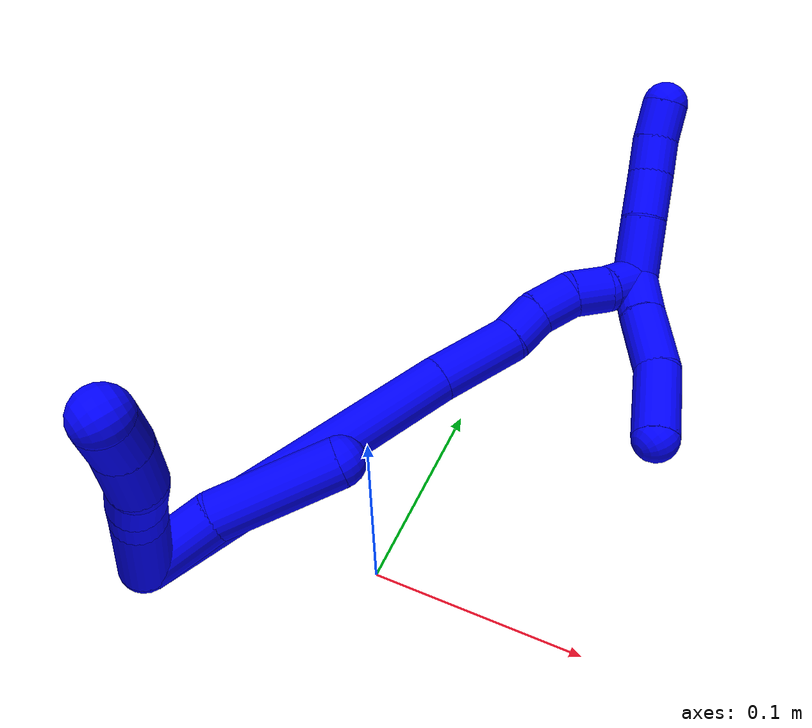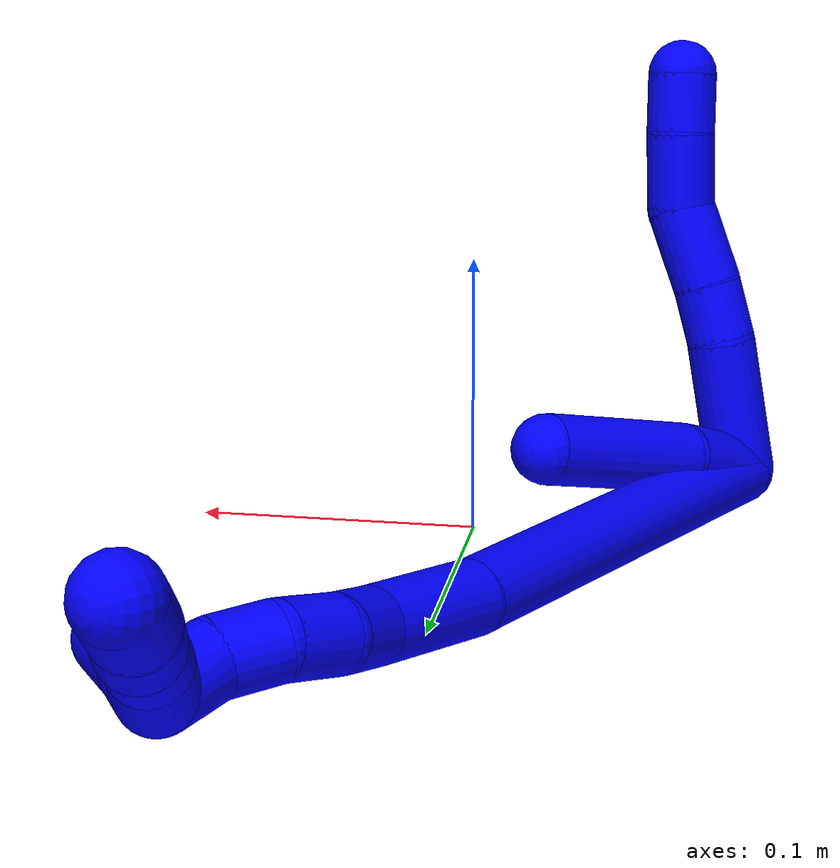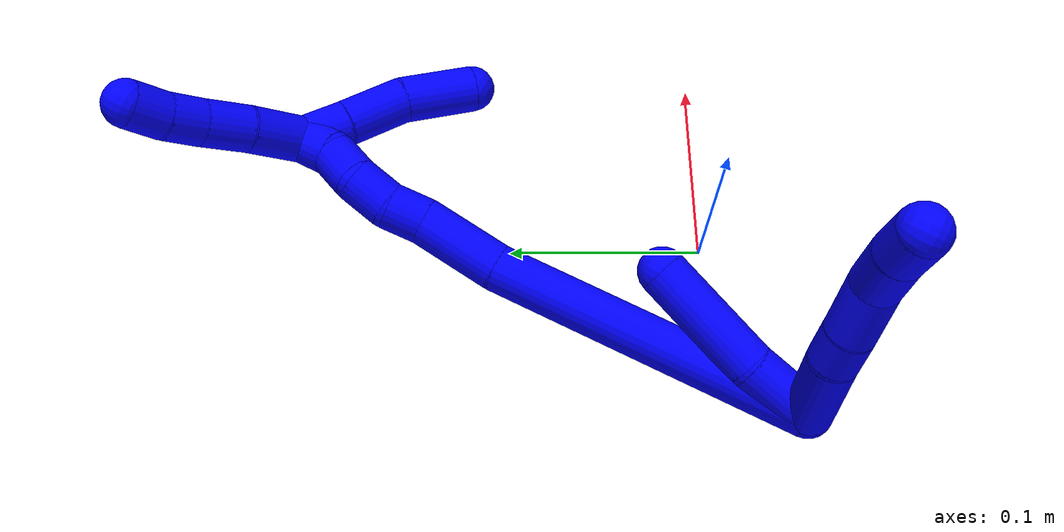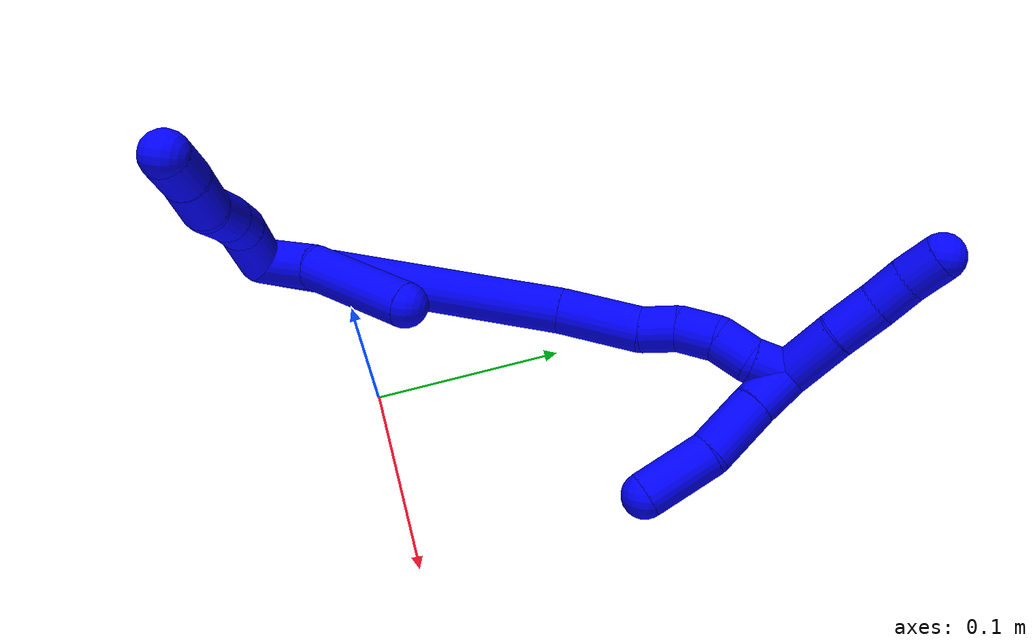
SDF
<sdf version="1.7">
 <world name="default">
  <model name="1">
   <static>0</static>
   <link name="1">
    <collision name="collision-cylinder-e_1_2_8">
     <pose>0.016855 -0.018156 0.003012 1.40642 0.741497 0.636694</pose>
     <geometry><cylinder><radius>0.0125</radius><length>0.049912</length></cylinder></geometry>
     <surface>
      <friction><ode><mu>1.16</mu><mu2>1.16</mu2><slip1>0</slip1><slip2>0</slip2></ode></friction>
      <contact><ode><kp>1e+06</kp><kd>1</kd><max_vel>0</max_vel><min_depth>0.001</min_depth></ode></contact>
     </surface>
    </collision>
    <visual name="visual-cylinder-e_1_2_8">
     <pose>0.016855 -0.018156 0.003012 1.40642 0.741497 0.636694</pose>
     <geometry><cylinder><radius>0.0125</radius><length>0.049912</length></cylinder></geometry>
     <material><ambient>0 0 1 1</ambient></material>
    </visual>
    <collision name="collision-cylinder-e_2_8_9">
     <pose>0.041869 -0.042771 0.00662 1.47871 0.89908 0.828987</pose>
     <geometry><cylinder><radius>0.0125</radius><length>0.020847</length></cylinder></geometry>
     <surface>
      <friction><ode><mu>1.16</mu><mu2>1.16</mu2><slip1>0</slip1><slip2>0</slip2></ode></friction>
      <contact><ode><kp>1e+06</kp><kd>1</kd><max_vel>0</max_vel><min_depth>0.001</min_depth></ode></contact>
     </surface>
    </collision>
    <visual name="visual-cylinder-e_2_8_9">
     <pose>0.041869 -0.042771 0.00662 1.47871 0.89908 0.828987</pose>
     <geometry><cylinder><radius>0.0125</radius><length>0.020847</length></cylinder></geometry>
     <material><ambient>0 0 1 1</ambient></material>
    </visual>
    <collision name="collision-cylinder-e_3_9_10">
     <pose>0.062652 -0.057493 0.008253 1.44601 0.987653 0.886909</pose>
     <geometry><cylinder><radius>0.0125</radius><length>0.030246</length></cylinder></geometry>
     <surface>
      <friction><ode><mu>1.16</mu><mu2>1.16</mu2><slip1>0</slip1><slip2>0</slip2></ode></friction>
      <contact><ode><kp>1e+06</kp><kd>1</kd><max_vel>0</max_vel><min_depth>0.001</min_depth></ode></contact>
     </surface>
    </collision>
    <visual name="visual-cylinder-e_3_9_10">
     <pose>0.062652 -0.057493 0.008253 1.44601 0.987653 0.886909</pose>
     <geometry><cylinder><radius>0.0125</radius><length>0.030246</length></cylinder></geometry>
     <material><ambient>0 0 1 1</ambient></material>
    </visual>
    <collision name="collision-cylinder-e_4_10_11">
     <pose>0.08362 -0.076771 0.009444 1.55672 0.648245 0.639794</pose>
     <geometry><cylinder><radius>0.0125</radius><length>0.02764</length></cylinder></geometry>
     <surface>
      <friction><ode><mu>1.16</mu><mu2>1.16</mu2><slip1>0</slip1><slip2>0</slip2></ode></friction>
      <contact><ode><kp>1e+06</kp><kd>1</kd><max_vel>0</max_vel><min_depth>0.001</min_depth></ode></contact>
     </surface>
    </collision>
    <visual name="visual-cylinder-e_4_10_11">
     <pose>0.08362 -0.076771 0.009444 1.55672 0.648245 0.639794</pose>
     <geometry><cylinder><radius>0.0125</radius><length>0.02764</length></cylinder></geometry>
     <material><ambient>0 0 1 1</ambient></material>
    </visual>
    <collision name="collision-cylinder-e_5_11_6">
     <pose>0.098564 -0.096124 0.008625 1.68717 0.666314 0.741743</pose>
     <geometry><cylinder><radius>0.0125</radius><length>0.021355</length></cylinder></geometry>
     <surface>
      <friction><ode><mu>1.16</mu><mu2>1.16</mu2><slip1>0</slip1><slip2>0</slip2></ode></friction>
      <contact><ode><kp>1e+06</kp><kd>1</kd><max_vel>0</max_vel><min_depth>0.001</min_depth></ode></contact>
     </surface>
    </collision>
    <visual name="visual-cylinder-e_5_11_6">
     <pose>0.098564 -0.096124 0.008625 1.68717 0.666314 0.741743</pose>
     <geometry><cylinder><radius>0.0125</radius><length>0.021355</length></cylinder></geometry>
     <material><ambient>0 0 1 1</ambient></material>
    </visual>
    <collision name="collision-cylinder-e_1_2_12">
     <pose>0.00453 -0.003107 0.017824 0.172567 0.24535 0.021329</pose>
     <geometry><cylinder><radius>0.0125</radius><length>0.037302</length></cylinder></geometry>
     <surface>
      <friction><ode><mu>1.16</mu><mu2>1.16</mu2><slip1>0</slip1><slip2>0</slip2></ode></friction>
      <contact><ode><kp>1e+06</kp><kd>1</kd><max_vel>0</max_vel><min_depth>0.001</min_depth></ode></contact>
     </surface>
    </collision>
    <visual name="visual-cylinder-e_1_2_12">
     <pose>0.00453 -0.003107 0.017824 0.172567 0.24535 0.021329</pose>
     <geometry><cylinder><radius>0.0125</radius><length>0.037302</length></cylinder></geometry>
     <material><ambient>0 0 1 1</ambient></material>
    </visual>
    <collision name="collision-cylinder-e_2_12_5">
     <pose>0.019608 -0.005213 0.065152 -0.033875 0.343135 -0.00587</pose>
     <geometry><cylinder><radius>0.0125</radius><length>0.062698</length></cylinder></geometry>
     <surface>
      <friction><ode><mu>1.16</mu><mu2>1.16</mu2><slip1>0</slip1><slip2>0</slip2></ode></friction>
      <contact><ode><kp>1e+06</kp><kd>1</kd><max_vel>0</max_vel><min_depth>0.001</min_depth></ode></contact>
     </surface>
    </collision>
    <visual name="visual-cylinder-e_2_12_5">
     <pose>0.019608 -0.005213 0.065152 -0.033875 0.343135 -0.00587</pose>
     <geometry><cylinder><radius>0.0125</radius><length>0.062698</length></cylinder></geometry>
     <material><ambient>0 0 1 1</ambient></material>
    </visual>
    <collision name="collision-cylinder-e_1_2_13">
     <pose>-0.004296 0.003054 0.085217 -0.035822 -0.050338 0.000902</pose>
     <geometry><cylinder><radius>0.0125</radius><length>0.17076</length></cylinder></geometry>
     <surface>
      <friction><ode><mu>1.16</mu><mu2>1.16</mu2><slip1>0</slip1><slip2>0</slip2></ode></friction>
      <contact><ode><kp>1e+06</kp><kd>1</kd><max_vel>0</max_vel><min_depth>0.001</min_depth></ode></contact>
     </surface>
    </collision>
    <visual name="visual-cylinder-e_1_2_13">
     <pose>-0.004296 0.003054 0.085217 -0.035822 -0.050338 0.000902</pose>
     <geometry><cylinder><radius>0.0125</radius><length>0.17076</length></cylinder></geometry>
     <material><ambient>0 0 1 1</ambient></material>
    </visual>
    <collision name="collision-cylinder-e_2_13_14">
     <pose>-0.006821 0.006993 0.19307 -0.039078 0.078041 -0.001526</pose>
     <geometry><cylinder><radius>0.0125</radius><length>0.045445</length></cylinder></geometry>
     <surface>
      <friction><ode><mu>1.16</mu><mu2>1.16</mu2><slip1>0</slip1><slip2>0</slip2></ode></friction>
      <contact><ode><kp>1e+06</kp><kd>1</kd><max_vel>0</max_vel><min_depth>0.001</min_depth></ode></contact>
     </surface>
    </collision>
    <visual name="visual-cylinder-e_2_13_14">
     <pose>-0.006821 0.006993 0.19307 -0.039078 0.078041 -0.001526</pose>
     <geometry><cylinder><radius>0.0125</radius><length>0.045445</length></cylinder></geometry>
     <material><ambient>0 0 1 1</ambient></material>
    </visual>
    <collision name="collision-cylinder-e_3_14_15">
     <pose>-0.005391 0.005863 0.225787 0.197281 -0.033285 -0.003294</pose>
     <geometry><cylinder><radius>0.0125</radius><length>0.020572</length></cylinder></geometry>
     <surface>
      <friction><ode><mu>1.16</mu><mu2>1.16</mu2><slip1>0</slip1><slip2>0</slip2></ode></friction>
      <contact><ode><kp>1e+06</kp><kd>1</kd><max_vel>0</max_vel><min_depth>0.001</min_depth></ode></contact>
     </surface>
    </collision>
    <visual name="visual-cylinder-e_3_14_15">
     <pose>-0.005391 0.005863 0.225787 0.197281 -0.033285 -0.003294</pose>
     <geometry><cylinder><radius>0.0125</radius><length>0.020572</length></cylinder></geometry>
     <material><ambient>0 0 1 1</ambient></material>
    </visual>
    <collision name="collision-cylinder-e_4_15_16">
     <pose>-0.003542 0.003783 0.24668 0.006063 0.199971 0.000608</pose>
     <geometry><cylinder><radius>0.0125</radius><length>0.022064</length></cylinder></geometry>
     <surface>
      <friction><ode><mu>1.16</mu><mu2>1.16</mu2><slip1>0</slip1><slip2>0</slip2></ode></friction>
      <contact><ode><kp>1e+06</kp><kd>1</kd><max_vel>0</max_vel><min_depth>0.001</min_depth></ode></contact>
     </surface>
    </collision>
    <visual name="visual-cylinder-e_4_15_16">
     <pose>-0.003542 0.003783 0.24668 0.006063 0.199971 0.000608</pose>
     <geometry><cylinder><radius>0.0125</radius><length>0.022064</length></cylinder></geometry>
     <material><ambient>0 0 1 1</ambient></material>
    </visual>
    <collision name="collision-cylinder-e_5_16_17">
     <pose>0.001291 0.00702 0.266779 -0.341723 0.261817 -0.045427</pose>
     <geometry><cylinder><radius>0.0125</radius><length>0.02041</length></cylinder></geometry>
     <surface>
      <friction><ode><mu>1.16</mu><mu2>1.16</mu2><slip1>0</slip1><slip2>0</slip2></ode></friction>
      <contact><ode><kp>1e+06</kp><kd>1</kd><max_vel>0</max_vel><min_depth>0.001</min_depth></ode></contact>
     </surface>
    </collision>
    <visual name="visual-cylinder-e_5_16_17">
     <pose>0.001291 0.00702 0.266779 -0.341723 0.261817 -0.045427</pose>
     <geometry><cylinder><radius>0.0125</radius><length>0.02041</length></cylinder></geometry>
     <material><ambient>0 0 1 1</ambient></material>
    </visual>
    <collision name="collision-cylinder-e_6_17_1">
     <pose>0.00315 0.01317 0.286013 -0.278694 -0.075445 0.010587</pose>
     <geometry><cylinder><radius>0.0125</radius><length>0.020749</length></cylinder></geometry>
     <surface>
      <friction><ode><mu>1.16</mu><mu2>1.16</mu2><slip1>0</slip1><slip2>0</slip2></ode></friction>
      <contact><ode><kp>1e+06</kp><kd>1</kd><max_vel>0</max_vel><min_depth>0.001</min_depth></ode></contact>
     </surface>
    </collision>
    <visual name="visual-cylinder-e_6_17_1">
     <pose>0.00315 0.01317 0.286013 -0.278694 -0.075445 0.010587</pose>
     <geometry><cylinder><radius>0.0125</radius><length>0.020749</length></cylinder></geometry>
     <material><ambient>0 0 1 1</ambient></material>
    </visual>
    <collision name="collision-cylinder-e_1_1_18">
     <pose>0.010705 0.022219 0.2889 -2.42054 0.725658 -1.57776</pose>
     <geometry><cylinder><radius>0.0125</radius><length>0.025124</length></cylinder></geometry>
     <surface>
      <friction><ode><mu>1.16</mu><mu2>1.16</mu2><slip1>0</slip1><slip2>0</slip2></ode></friction>
      <contact><ode><kp>1e+06</kp><kd>1</kd><max_vel>0</max_vel><min_depth>0.001</min_depth></ode></contact>
     </surface>
    </collision>
    <visual name="visual-cylinder-e_1_1_18">
     <pose>0.010705 0.022219 0.2889 -2.42054 0.725658 -1.57776</pose>
     <geometry><cylinder><radius>0.0125</radius><length>0.025124</length></cylinder></geometry>
     <material><ambient>0 0 1 1</ambient></material>
    </visual>
    <collision name="collision-cylinder-e_2_18_19">
     <pose>0.03074 0.037742 0.272841 -2.33882 0.734479 -1.47265</pose>
     <geometry><cylinder><radius>0.0125</radius><length>0.034912</length></cylinder></geometry>
     <surface>
      <friction><ode><mu>1.16</mu><mu2>1.16</mu2><slip1>0</slip1><slip2>0</slip2></ode></friction>
      <contact><ode><kp>1e+06</kp><kd>1</kd><max_vel>0</max_vel><min_depth>0.001</min_depth></ode></contact>
     </surface>
    </collision>
    <visual name="visual-cylinder-e_2_18_19">
     <pose>0.03074 0.037742 0.272841 -2.33882 0.734479 -1.47265</pose>
     <geometry><cylinder><radius>0.0125</radius><length>0.034912</length></cylinder></geometry>
     <material><ambient>0 0 1 1</ambient></material>
    </visual>
    <collision name="collision-cylinder-e_3_19_4">
     <pose>0.053186 0.056013 0.24957 -2.58131 0.567838 -1.58493</pose>
     <geometry><cylinder><radius>0.0125</radius><length>0.039964</length></cylinder></geometry>
     <surface>
      <friction><ode><mu>1.16</mu><mu2>1.16</mu2><slip1>0</slip1><slip2>0</slip2></ode></friction>
      <contact><ode><kp>1e+06</kp><kd>1</kd><max_vel>0</max_vel><min_depth>0.001</min_depth></ode></contact>
     </surface>
    </collision>
    <visual name="visual-cylinder-e_3_19_4">
     <pose>0.053186 0.056013 0.24957 -2.58131 0.567838 -1.58493</pose>
     <geometry><cylinder><radius>0.0125</radius><length>0.039964</length></cylinder></geometry>
     <material><ambient>0 0 1 1</ambient></material>
    </visual>
    <collision name="collision-cylinder-e_1_1_20">
     <pose>0.000153 0.003312 0.306762 0.866028 -0.132046 -0.061111</pose>
     <geometry><cylinder><radius>0.0125</radius><length>0.033646</length></cylinder></geometry>
     <surface>
      <friction><ode><mu>1.16</mu><mu2>1.16</mu2><slip1>0</slip1><slip2>0</slip2></ode></friction>
      <contact><ode><kp>1e+06</kp><kd>1</kd><max_vel>0</max_vel><min_depth>0.001</min_depth></ode></contact>
     </surface>
    </collision>
    <visual name="visual-cylinder-e_1_1_20">
     <pose>0.000153 0.003312 0.306762 0.866028 -0.132046 -0.061111</pose>
     <geometry><cylinder><radius>0.0125</radius><length>0.033646</length></cylinder></geometry>
     <material><ambient>0 0 1 1</ambient></material>
    </visual>
    <collision name="collision-cylinder-e_2_20_21">
     <pose>-0.004733 -0.018431 0.326458 0.793641 -0.207674 -0.087284</pose>
     <geometry><cylinder><radius>0.0125</radius><length>0.025916</length></cylinder></geometry>
     <surface>
      <friction><ode><mu>1.16</mu><mu2>1.16</mu2><slip1>0</slip1><slip2>0</slip2></ode></friction>
      <contact><ode><kp>1e+06</kp><kd>1</kd><max_vel>0</max_vel><min_depth>0.001</min_depth></ode></contact>
     </surface>
    </collision>
    <visual name="visual-cylinder-e_2_20_21">
     <pose>-0.004733 -0.018431 0.326458 0.793641 -0.207674 -0.087284</pose>
     <geometry><cylinder><radius>0.0125</radius><length>0.025916</length></cylinder></geometry>
     <material><ambient>0 0 1 1</ambient></material>
    </visual>
    <collision name="collision-cylinder-e_3_21_22">
     <pose>-0.008873 -0.034991 0.341779 0.863458 -0.147322 -0.067971</pose>
     <geometry><cylinder><radius>0.0125</radius><length>0.020004</length></cylinder></geometry>
     <surface>
      <friction><ode><mu>1.16</mu><mu2>1.16</mu2><slip1>0</slip1><slip2>0</slip2></ode></friction>
      <contact><ode><kp>1e+06</kp><kd>1</kd><max_vel>0</max_vel><min_depth>0.001</min_depth></ode></contact>
     </surface>
    </collision>
    <visual name="visual-cylinder-e_3_21_22">
     <pose>-0.008873 -0.034991 0.341779 0.863458 -0.147322 -0.067971</pose>
     <geometry><cylinder><radius>0.0125</radius><length>0.020004</length></cylinder></geometry>
     <material><ambient>0 0 1 1</ambient></material>
    </visual>
    <collision name="collision-cylinder-e_4_22_3">
     <pose>-0.010557 -0.049954 0.355203 0.816401 -0.021048 -0.009103</pose>
     <geometry><cylinder><radius>0.0125</radius><length>0.020434</length></cylinder></geometry>
     <surface>
      <friction><ode><mu>1.16</mu><mu2>1.16</mu2><slip1>0</slip1><slip2>0</slip2></ode></friction>
      <contact><ode><kp>1e+06</kp><kd>1</kd><max_vel>0</max_vel><min_depth>0.001</min_depth></ode></contact>
     </surface>
    </collision>
    <visual name="visual-cylinder-e_4_22_3">
     <pose>-0.010557 -0.049954 0.355203 0.816401 -0.021048 -0.009103</pose>
     <geometry><cylinder><radius>0.0125</radius><length>0.020434</length></cylinder></geometry>
     <material><ambient>0 0 1 1</ambient></material>
    </visual>
    <collision name="collision-sphere-3">
     <pose>-0.010772 -0.057397 0.362199 0 -0 0</pose>
     <geometry><sphere><radius>0.0125</radius></sphere></geometry>
     <surface>
      <friction><ode><mu>1.16</mu><mu2>1.16</mu2><slip1>0</slip1><slip2>0</slip2></ode></friction>
      <contact><ode><kp>1e+06</kp><kd>1</kd><max_vel>0</max_vel><min_depth>0.001</min_depth></ode></contact>
     </surface>
    </collision>
    <visual name="visual-sphere-3">
     <pose>-0.010772 -0.057397 0.362199 0 -0 0</pose>
     <geometry><sphere><radius>0.0125</radius></sphere></geometry>
     <material><ambient>0 0 1 1</ambient></material>
    </visual>
    <collision name="collision-sphere-22">
     <pose>-0.010342 -0.042511 0.348208 0 -0 0</pose>
     <geometry><sphere><radius>0.0125</radius></sphere></geometry>
     <surface>
      <friction><ode><mu>1.16</mu><mu2>1.16</mu2><slip1>0</slip1><slip2>0</slip2></ode></friction>
      <contact><ode><kp>1e+06</kp><kd>1</kd><max_vel>0</max_vel><min_depth>0.001</min_depth></ode></contact>
     </surface>
    </collision>
    <visual name="visual-sphere-22">
     <pose>-0.010342 -0.042511 0.348208 0 -0 0</pose>
     <geometry><sphere><radius>0.0125</radius></sphere></geometry>
     <material><ambient>0 0 1 1</ambient></material>
    </visual>
    <collision name="collision-sphere-21">
     <pose>-0.007405 -0.027471 0.33535 0 -0 0</pose>
     <geometry><sphere><radius>0.0125</radius></sphere></geometry>
     <surface>
      <friction><ode><mu>1.16</mu><mu2>1.16</mu2><slip1>0</slip1><slip2>0</slip2></ode></friction>
      <contact><ode><kp>1e+06</kp><kd>1</kd><max_vel>0</max_vel><min_depth>0.001</min_depth></ode></contact>
     </surface>
    </collision>
    <visual name="visual-sphere-21">
     <pose>-0.007405 -0.027471 0.33535 0 -0 0</pose>
     <geometry><sphere><radius>0.0125</radius></sphere></geometry>
     <material><ambient>0 0 1 1</ambient></material>
    </visual>
    <collision name="collision-sphere-20">
     <pose>-0.002062 -0.009391 0.317566 0 -0 0</pose>
     <geometry><sphere><radius>0.0125</radius></sphere></geometry>
     <surface>
      <friction><ode><mu>1.16</mu><mu2>1.16</mu2><slip1>0</slip1><slip2>0</slip2></ode></friction>
      <contact><ode><kp>1e+06</kp><kd>1</kd><max_vel>0</max_vel><min_depth>0.001</min_depth></ode></contact>
     </surface>
    </collision>
    <visual name="visual-sphere-20">
     <pose>-0.002062 -0.009391 0.317566 0 -0 0</pose>
     <geometry><sphere><radius>0.0125</radius></sphere></geometry>
     <material><ambient>0 0 1 1</ambient></material>
    </visual>
    <collision name="collision-sphere-4">
     <pose>0.063932 0.064965 0.2353 0 -0 0</pose>
     <geometry><sphere><radius>0.0125</radius></sphere></geometry>
     <surface>
      <friction><ode><mu>1.16</mu><mu2>1.16</mu2><slip1>0</slip1><slip2>0</slip2></ode></friction>
      <contact><ode><kp>1e+06</kp><kd>1</kd><max_vel>0</max_vel><min_depth>0.001</min_depth></ode></contact>
     </surface>
    </collision>
    <visual name="visual-sphere-4">
     <pose>0.063932 0.064965 0.2353 0 -0 0</pose>
     <geometry><sphere><radius>0.0125</radius></sphere></geometry>
     <material><ambient>0 0 1 1</ambient></material>
    </visual>
    <collision name="collision-sphere-6">
     <pose>0.105164 -0.104461 0.00765 0 -0 0</pose>
     <geometry><sphere><radius>0.0125</radius></sphere></geometry>
     <surface>
      <friction><ode><mu>1.16</mu><mu2>1.16</mu2><slip1>0</slip1><slip2>0</slip2></ode></friction>
      <contact><ode><kp>1e+06</kp><kd>1</kd><max_vel>0</max_vel><min_depth>0.001</min_depth></ode></contact>
     </surface>
    </collision>
    <visual name="visual-sphere-6">
     <pose>0.105164 -0.104461 0.00765 0 -0 0</pose>
     <geometry><sphere><radius>0.0125</radius></sphere></geometry>
     <material><ambient>0 0 1 1</ambient></material>
    </visual>
    <collision name="collision-sphere-11">
     <pose>0.091964 -0.087787 0.009599 0 -0 0</pose>
     <geometry><sphere><radius>0.0125</radius></sphere></geometry>
     <surface>
      <friction><ode><mu>1.16</mu><mu2>1.16</mu2><slip1>0</slip1><slip2>0</slip2></ode></friction>
      <contact><ode><kp>1e+06</kp><kd>1</kd><max_vel>0</max_vel><min_depth>0.001</min_depth></ode></contact>
     </surface>
    </collision>
    <visual name="visual-sphere-11">
     <pose>0.091964 -0.087787 0.009599 0 -0 0</pose>
     <geometry><sphere><radius>0.0125</radius></sphere></geometry>
     <material><ambient>0 0 1 1</ambient></material>
    </visual>
    <collision name="collision-sphere-10">
     <pose>0.075275 -0.065756 0.009289 0 -0 0</pose>
     <geometry><sphere><radius>0.0125</radius></sphere></geometry>
     <surface>
      <friction><ode><mu>1.16</mu><mu2>1.16</mu2><slip1>0</slip1><slip2>0</slip2></ode></friction>
      <contact><ode><kp>1e+06</kp><kd>1</kd><max_vel>0</max_vel><min_depth>0.001</min_depth></ode></contact>
     </surface>
    </collision>
    <visual name="visual-sphere-10">
     <pose>0.075275 -0.065756 0.009289 0 -0 0</pose>
     <geometry><sphere><radius>0.0125</radius></sphere></geometry>
     <material><ambient>0 0 1 1</ambient></material>
    </visual>
    <collision name="collision-sphere-9">
     <pose>0.050028 -0.04923 0.007216 0 -0 0</pose>
     <geometry><sphere><radius>0.0125</radius></sphere></geometry>
     <surface>
      <friction><ode><mu>1.16</mu><mu2>1.16</mu2><slip1>0</slip1><slip2>0</slip2></ode></friction>
      <contact><ode><kp>1e+06</kp><kd>1</kd><max_vel>0</max_vel><min_depth>0.001</min_depth></ode></contact>
     </surface>
    </collision>
    <visual name="visual-sphere-9">
     <pose>0.050028 -0.04923 0.007216 0 -0 0</pose>
     <geometry><sphere><radius>0.0125</radius></sphere></geometry>
     <material><ambient>0 0 1 1</ambient></material>
    </visual>
    <collision name="collision-sphere-2">
     <geometry><sphere><radius>0.0125</radius></sphere></geometry>
     <surface>
      <friction><ode><mu>1.16</mu><mu2>1.16</mu2><slip1>0</slip1><slip2>0</slip2></ode></friction>
      <contact><ode><kp>1e+06</kp><kd>1</kd><max_vel>0</max_vel><min_depth>0.001</min_depth></ode></contact>
     </surface>
    </collision>
    <visual name="visual-sphere-2">
     <geometry><sphere><radius>0.0125</radius></sphere></geometry>
     <material><ambient>0 0 1 1</ambient></material>
    </visual>
    <collision name="collision-sphere-19">
     <pose>0.042439 0.04706 0.263841 0 -0 0</pose>
     <geometry><sphere><radius>0.0125</radius></sphere></geometry>
     <surface>
      <friction><ode><mu>1.16</mu><mu2>1.16</mu2><slip1>0</slip1><slip2>0</slip2></ode></friction>
      <contact><ode><kp>1e+06</kp><kd>1</kd><max_vel>0</max_vel><min_depth>0.001</min_depth></ode></contact>
     </surface>
    </collision>
    <visual name="visual-sphere-19">
     <pose>0.042439 0.04706 0.263841 0 -0 0</pose>
     <geometry><sphere><radius>0.0125</radius></sphere></geometry>
     <material><ambient>0 0 1 1</ambient></material>
    </visual>
    <collision name="collision-sphere-8">
     <pose>0.03371 -0.036312 0.006023 0 -0 0</pose>
     <geometry><sphere><radius>0.0125</radius></sphere></geometry>
     <surface>
      <friction><ode><mu>1.16</mu><mu2>1.16</mu2><slip1>0</slip1><slip2>0</slip2></ode></friction>
      <contact><ode><kp>1e+06</kp><kd>1</kd><max_vel>0</max_vel><min_depth>0.001</min_depth></ode></contact>
     </surface>
    </collision>
    <visual name="visual-sphere-8">
     <pose>0.03371 -0.036312 0.006023 0 -0 0</pose>
     <geometry><sphere><radius>0.0125</radius></sphere></geometry>
     <material><ambient>0 0 1 1</ambient></material>
    </visual>
    <collision name="collision-sphere-12">
     <pose>0.00906 -0.006213 0.035647 0 -0 0</pose>
     <geometry><sphere><radius>0.0125</radius></sphere></geometry>
     <surface>
      <friction><ode><mu>1.16</mu><mu2>1.16</mu2><slip1>0</slip1><slip2>0</slip2></ode></friction>
      <contact><ode><kp>1e+06</kp><kd>1</kd><max_vel>0</max_vel><min_depth>0.001</min_depth></ode></contact>
     </surface>
    </collision>
    <visual name="visual-sphere-12">
     <pose>0.00906 -0.006213 0.035647 0 -0 0</pose>
     <geometry><sphere><radius>0.0125</radius></sphere></geometry>
     <material><ambient>0 0 1 1</ambient></material>
    </visual>
    <collision name="collision-sphere-5">
     <pose>0.030155 -0.004214 0.094657 0 -0 0</pose>
     <geometry><sphere><radius>0.0125</radius></sphere></geometry>
     <surface>
      <friction><ode><mu>1.16</mu><mu2>1.16</mu2><slip1>0</slip1><slip2>0</slip2></ode></friction>
      <contact><ode><kp>1e+06</kp><kd>1</kd><max_vel>0</max_vel><min_depth>0.001</min_depth></ode></contact>
     </surface>
    </collision>
    <visual name="visual-sphere-5">
     <pose>0.030155 -0.004214 0.094657 0 -0 0</pose>
     <geometry><sphere><radius>0.0125</radius></sphere></geometry>
     <material><ambient>0 0 1 1</ambient></material>
    </visual>
    <collision name="collision-sphere-13">
     <pose>-0.008592 0.006108 0.170434 0 -0 0</pose>
     <geometry><sphere><radius>0.0125</radius></sphere></geometry>
     <surface>
      <friction><ode><mu>1.16</mu><mu2>1.16</mu2><slip1>0</slip1><slip2>0</slip2></ode></friction>
      <contact><ode><kp>1e+06</kp><kd>1</kd><max_vel>0</max_vel><min_depth>0.001</min_depth></ode></contact>
     </surface>
    </collision>
    <visual name="visual-sphere-13">
     <pose>-0.008592 0.006108 0.170434 0 -0 0</pose>
     <geometry><sphere><radius>0.0125</radius></sphere></geometry>
     <material><ambient>0 0 1 1</ambient></material>
    </visual>
    <collision name="collision-sphere-14">
     <pose>-0.005049 0.007878 0.215706 0 -0 0</pose>
     <geometry><sphere><radius>0.0125</radius></sphere></geometry>
     <surface>
      <friction><ode><mu>1.16</mu><mu2>1.16</mu2><slip1>0</slip1><slip2>0</slip2></ode></friction>
      <contact><ode><kp>1e+06</kp><kd>1</kd><max_vel>0</max_vel><min_depth>0.001</min_depth></ode></contact>
     </surface>
    </collision>
    <visual name="visual-sphere-14">
     <pose>-0.005049 0.007878 0.215706 0 -0 0</pose>
     <geometry><sphere><radius>0.0125</radius></sphere></geometry>
     <material><ambient>0 0 1 1</ambient></material>
    </visual>
    <collision name="collision-sphere-15">
     <pose>-0.005734 0.003848 0.235868 0 -0 0</pose>
     <geometry><sphere><radius>0.0125</radius></sphere></geometry>
     <surface>
      <friction><ode><mu>1.16</mu><mu2>1.16</mu2><slip1>0</slip1><slip2>0</slip2></ode></friction>
      <contact><ode><kp>1e+06</kp><kd>1</kd><max_vel>0</max_vel><min_depth>0.001</min_depth></ode></contact>
     </surface>
    </collision>
    <visual name="visual-sphere-15">
     <pose>-0.005734 0.003848 0.235868 0 -0 0</pose>
     <geometry><sphere><radius>0.0125</radius></sphere></geometry>
     <material><ambient>0 0 1 1</ambient></material>
    </visual>
    <collision name="collision-sphere-16">
     <pose>-0.001351 0.003717 0.257492 0 -0 0</pose>
     <geometry><sphere><radius>0.0125</radius></sphere></geometry>
     <surface>
      <friction><ode><mu>1.16</mu><mu2>1.16</mu2><slip1>0</slip1><slip2>0</slip2></ode></friction>
      <contact><ode><kp>1e+06</kp><kd>1</kd><max_vel>0</max_vel><min_depth>0.001</min_depth></ode></contact>
     </surface>
    </collision>
    <visual name="visual-sphere-16">
     <pose>-0.001351 0.003717 0.257492 0 -0 0</pose>
     <geometry><sphere><radius>0.0125</radius></sphere></geometry>
     <material><ambient>0 0 1 1</ambient></material>
    </visual>
    <collision name="collision-sphere-17">
     <pose>0.003932 0.010324 0.276067 0 -0 0</pose>
     <geometry><sphere><radius>0.0125</radius></sphere></geometry>
     <surface>
      <friction><ode><mu>1.16</mu><mu2>1.16</mu2><slip1>0</slip1><slip2>0</slip2></ode></friction>
      <contact><ode><kp>1e+06</kp><kd>1</kd><max_vel>0</max_vel><min_depth>0.001</min_depth></ode></contact>
     </surface>
    </collision>
    <visual name="visual-sphere-17">
     <pose>0.003932 0.010324 0.276067 0 -0 0</pose>
     <geometry><sphere><radius>0.0125</radius></sphere></geometry>
     <material><ambient>0 0 1 1</ambient></material>
    </visual>
    <collision name="collision-sphere-1">
     <pose>0.002368 0.016015 0.295958 0 -0 0</pose>
     <geometry><sphere><radius>0.0125</radius></sphere></geometry>
     <surface>
      <friction><ode><mu>1.16</mu><mu2>1.16</mu2><slip1>0</slip1><slip2>0</slip2></ode></friction>
      <contact><ode><kp>1e+06</kp><kd>1</kd><max_vel>0</max_vel><min_depth>0.001</min_depth></ode></contact>
     </surface>
    </collision>
    <visual name="visual-sphere-1">
     <pose>0.002368 0.016015 0.295958 0 -0 0</pose>
     <geometry><sphere><radius>0.0125</radius></sphere></geometry>
     <material><ambient>0 0 1 1</ambient></material>
    </visual>
    <collision name="collision-sphere-18">
     <pose>0.019042 0.028423 0.281841 0 -0 0</pose>
     <geometry><sphere><radius>0.0125</radius></sphere></geometry>
     <surface>
      <friction><ode><mu>1.16</mu><mu2>1.16</mu2><slip1>0</slip1><slip2>0</slip2></ode></friction>
      <contact><ode><kp>1e+06</kp><kd>1</kd><max_vel>0</max_vel><min_depth>0.001</min_depth></ode></contact>
     </surface>
    </collision>
    <visual name="visual-sphere-18">
     <pose>0.019042 0.028423 0.281841 0 -0 0</pose>
     <geometry><sphere><radius>0.0125</radius></sphere></geometry>
     <material><ambient>0 0 1 1</ambient></material>
    </visual>
    <inertial>
     <pose>0.014986 -0.006223 0.14688 0 -0 0</pose>
     <mass>0.75</mass>
     <inertia><ixx>0.000499</ixx><ixy>0</ixy><ixz>0</ixz><iyy>0.000478</iyy><iyz>0</iyz><izz>2e-05</izz></inertia>
    </inertial>
   </link>
   <pose>-0.094056 -0.044871 0.012528 -1.47631 -0.567336 -0.548034</pose>
  </model>
 </world>
</sdf>
